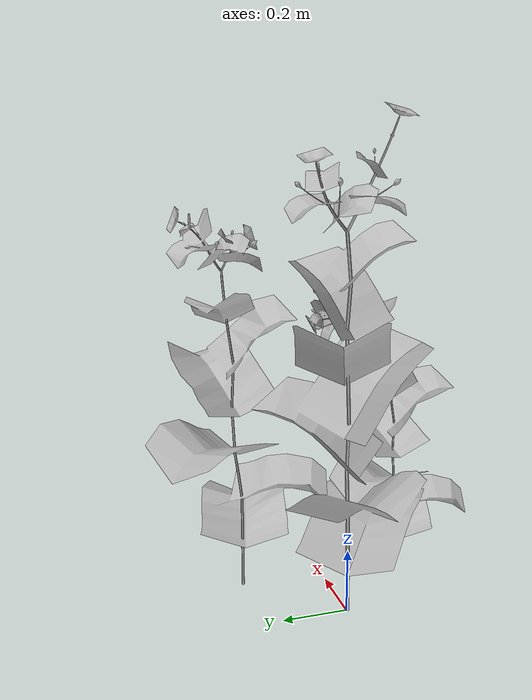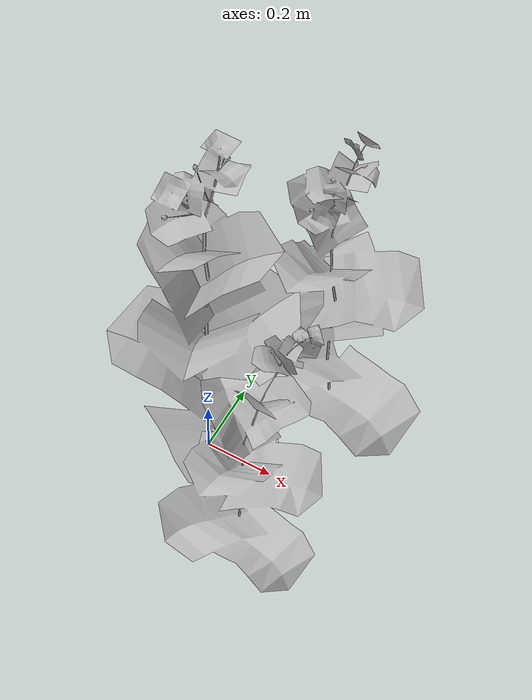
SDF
<?xml version="1.0" ?>
<sdf version="1.6">
  <model name="weed10">
    <static>1</static>
    <link name="weed10_1">

      <visual name="weed10_1">
        <geometry>
          <mesh>
            <uri>model://weed10/meshes/GC27_v1.obj</uri>
          </mesh>
        </geometry>
        <cast_shadows>1</cast_shadows>
      </visual>
        <pose>0 0 0 0 0 0</pose>
    </link>
    <link name="weed10_2">

      <visual name="weed10_2">
        <geometry>
          <mesh>
            <uri>model://weed10/meshes/GC27_v2.obj</uri>
          </mesh>
        </geometry>
        <cast_shadows>1</cast_shadows>
      </visual>
        <pose>0.25 -0.25 0 0 0 0</pose>
    </link>
    <link name="weed10_3">

      <visual name="weed10_3">
        <geometry>
          <mesh>
            <uri>model://weed10/meshes/GC27_v3.obj</uri>
          </mesh>
        </geometry>
        <cast_shadows>1</cast_shadows>
      </visual>
        <pose>0.25 0.25 0 0 0 0</pose>
    </link>
  </model>

</sdf>
